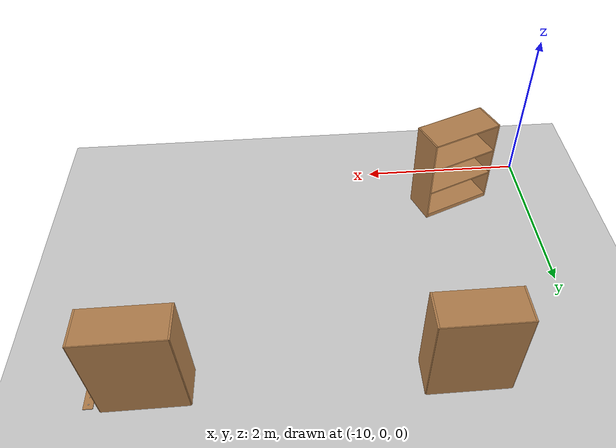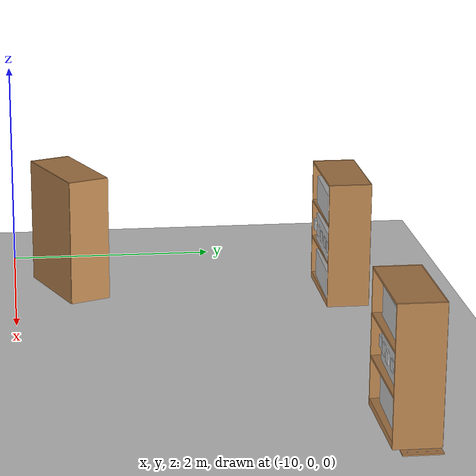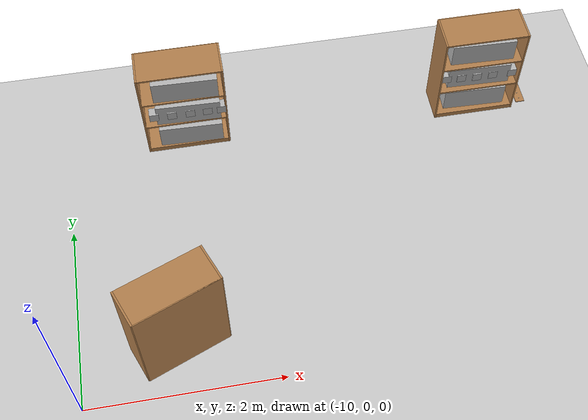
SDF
<sdf version="1.7">
 <world name="default">
  <model name="ground_plane">
   <static>1</static>
   <link name="link">
    <collision name="collision">
     <geometry><plane><normal>0 0 1</normal><size>100 100</size></plane></geometry>
     <surface><friction><ode><mu>100</mu><mu2>50</mu2></ode></friction></surface>
    </collision>
    <visual name="visual">
     <cast_shadows>0</cast_shadows>
     <geometry><plane><normal>0 0 1</normal><size>100 100</size></plane></geometry>
     <material>
      <script><uri>file://media/materials/scripts/gazebo.material</uri><name>Gazebo/Grey</name></script>
     </material>
    </visual>
   </link>
  </model>
  <model name="bookshelf_0">
   <static>1</static>
   <link name="link">
    <inertial><mass>1</mass></inertial>
    <collision name="back">
     <pose>0 0.005 0.6 0 -0 0</pose>
     <geometry><box><size>0.9 0.01 1.2</size></box></geometry>
    </collision>
    <visual name="visual1">
     <pose>0 0.005 0.6 0 -0 0</pose>
     <geometry><box><size>0.9 0.01 1.2</size></box></geometry>
     <material>
      <script><uri>file://media/materials/scripts/gazebo.material</uri><name>Gazebo/Wood</name></script>
     </material>
    </visual>
    <collision name="left_side">
     <pose>0.45 -0.195 0.6 0 -0 0</pose>
     <geometry><box><size>0.02 0.4 1.2</size></box></geometry>
    </collision>
    <visual name="visual2">
     <pose>0.45 -0.195 0.6 0 -0 0</pose>
     <geometry><box><size>0.02 0.4 1.2</size></box></geometry>
     <material>
      <script><uri>file://media/materials/scripts/gazebo.material</uri><name>Gazebo/Wood</name></script>
     </material>
    </visual>
    <collision name="right_side">
     <pose>-0.45 -0.195 0.6 0 -0 0</pose>
     <geometry><box><size>0.02 0.4 1.2</size></box></geometry>
    </collision>
    <visual name="visual3">
     <pose>-0.45 -0.195 0.6 0 -0 0</pose>
     <geometry><box><size>0.02 0.4 1.2</size></box></geometry>
     <material>
      <script><uri>file://media/materials/scripts/gazebo.material</uri><name>Gazebo/Wood</name></script>
     </material>
    </visual>
    <collision name="bottom">
     <pose>0 -0.195 0.03 0 -0 0</pose>
     <geometry><box><size>0.88 0.4 0.06</size></box></geometry>
    </collision>
    <visual name="visual4">
     <pose>0 -0.195 0.03 0 -0 0</pose>
     <geometry><box><size>0.88 0.4 0.06</size></box></geometry>
     <material>
      <script><uri>file://media/materials/scripts/gazebo.material</uri><name>Gazebo/Wood</name></script>
     </material>
    </visual>
    <collision name="top">
     <pose>0 -0.195 1.19 0 -0 0</pose>
     <geometry><box><size>0.88 0.4 0.02</size></box></geometry>
    </collision>
    <visual name="visual5">
     <pose>0 -0.195 1.19 0 -0 0</pose>
     <geometry><box><size>0.88 0.4 0.02</size></box></geometry>
     <material>
      <script><uri>file://media/materials/scripts/gazebo.material</uri><name>Gazebo/Wood</name></script>
     </material>
    </visual>
    <collision name="low_shelf">
     <pose>0 -0.195 0.43 0 -0 0</pose>
     <geometry><box><size>0.88 0.4 0.02</size></box></geometry>
    </collision>
    <visual name="visual6">
     <pose>0 -0.195 0.43 0 -0 0</pose>
     <geometry><box><size>0.88 0.4 0.02</size></box></geometry>
     <material>
      <script><uri>file://media/materials/scripts/gazebo.material</uri><name>Gazebo/Wood</name></script>
     </material>
    </visual>
    <collision name="high_shelf">
     <pose>0 -0.195 0.8 0 -0 0</pose>
     <geometry><box><size>0.88 0.4 0.02</size></box></geometry>
    </collision>
    <visual name="visual7">
     <pose>0 -0.195 0.8 0 -0 0</pose>
     <geometry><box><size>0.88 0.4 0.02</size></box></geometry>
     <material>
      <script><uri>file://media/materials/scripts/gazebo.material</uri><name>Gazebo/Wood</name></script>
     </material>
    </visual>
   </link>
   <pose>-8.64596 3.34342 0 0 -0 0</pose>
  </model>
  <model name="bookshelf_0_clone">
   <static>1</static>
   <link name="link">
    <inertial><mass>1</mass></inertial>
    <collision name="back">
     <pose>0 0.005 0.6 0 -0 0</pose>
     <geometry><box><size>0.9 0.01 1.2</size></box></geometry>
    </collision>
    <visual name="visual1">
     <pose>0 0.005 0.6 0 -0 0</pose>
     <geometry><box><size>0.9 0.01 1.2</size></box></geometry>
     <material>
      <script><uri>file://media/materials/scripts/gazebo.material</uri><name>Gazebo/Wood</name></script>
     </material>
    </visual>
    <collision name="left_side">
     <pose>0.45 -0.195 0.6 0 -0 0</pose>
     <geometry><box><size>0.02 0.4 1.2</size></box></geometry>
    </collision>
    <visual name="visual2">
     <pose>0.45 -0.195 0.6 0 -0 0</pose>
     <geometry><box><size>0.02 0.4 1.2</size></box></geometry>
     <material>
      <script><uri>file://media/materials/scripts/gazebo.material</uri><name>Gazebo/Wood</name></script>
     </material>
    </visual>
    <collision name="right_side">
     <pose>-0.45 -0.195 0.6 0 -0 0</pose>
     <geometry><box><size>0.02 0.4 1.2</size></box></geometry>
    </collision>
    <visual name="visual3">
     <pose>-0.45 -0.195 0.6 0 -0 0</pose>
     <geometry><box><size>0.02 0.4 1.2</size></box></geometry>
     <material>
      <script><uri>file://media/materials/scripts/gazebo.material</uri><name>Gazebo/Wood</name></script>
     </material>
    </visual>
    <collision name="bottom">
     <pose>0 -0.195 0.03 0 -0 0</pose>
     <geometry><box><size>0.88 0.4 0.06</size></box></geometry>
    </collision>
    <visual name="visual4">
     <pose>0 -0.195 0.03 0 -0 0</pose>
     <geometry><box><size>0.88 0.4 0.06</size></box></geometry>
     <material>
      <script><uri>file://media/materials/scripts/gazebo.material</uri><name>Gazebo/Wood</name></script>
     </material>
    </visual>
    <collision name="top">
     <pose>0 -0.195 1.19 0 -0 0</pose>
     <geometry><box><size>0.88 0.4 0.02</size></box></geometry>
    </collision>
    <visual name="visual5">
     <pose>0 -0.195 1.19 0 -0 0</pose>
     <geometry><box><size>0.88 0.4 0.02</size></box></geometry>
     <material>
      <script><uri>file://media/materials/scripts/gazebo.material</uri><name>Gazebo/Wood</name></script>
     </material>
    </visual>
    <collision name="low_shelf">
     <pose>0 -0.195 0.43 0 -0 0</pose>
     <geometry><box><size>0.88 0.4 0.02</size></box></geometry>
    </collision>
    <visual name="visual6">
     <pose>0 -0.195 0.43 0 -0 0</pose>
     <geometry><box><size>0.88 0.4 0.02</size></box></geometry>
     <material>
      <script><uri>file://media/materials/scripts/gazebo.material</uri><name>Gazebo/Wood</name></script>
     </material>
    </visual>
    <collision name="high_shelf">
     <pose>0 -0.195 0.8 0 -0 0</pose>
     <geometry><box><size>0.88 0.4 0.02</size></box></geometry>
    </collision>
    <visual name="visual7">
     <pose>0 -0.195 0.8 0 -0 0</pose>
     <geometry><box><size>0.88 0.4 0.02</size></box></geometry>
     <material>
      <script><uri>file://media/materials/scripts/gazebo.material</uri><name>Gazebo/Wood</name></script>
     </material>
    </visual>
   </link>
   <pose>-5.35741 3.26655 0 0 -0 0</pose>
  </model>
  <model name="wooden_board_clone_0">
   <link name="base">
    <pose>0 0 0.00523 0 -0 0</pose>
    <inertial>
     <mass>0.2765</mass>
     <inertia>
      <ixx>0.0025148</ixx>
      <ixy>0</ixy>
      <ixz>0</ixz>
      <iyy>0.00024037</iyy>
      <iyz>0</iyz>
      <izz>0.00275013</izz>
     </inertia>
    </inertial>
    <collision name="collision">
     <geometry><box><size>0.1016 0.3302 0.01046</size></box></geometry>
     <surface>
      <contact>
       <poissons_ratio>0.347</poissons_ratio>
       <elastic_modulus>8.8e+09</elastic_modulus>
       <ode><kp>100000</kp><kd>100</kd><max_vel>100</max_vel><min_depth>0.001</min_depth></ode>
      </contact>
      <friction>
       <torsional>
        <coefficient>1</coefficient>
        <use_patch_radius>0</use_patch_radius>
        <surface_radius>0.01</surface_radius>
       </torsional>
      </friction>
     </surface>
    </collision>
    <visual name="visual">
     <geometry><box><size>0.1016 0.3302 0.01046</size></box></geometry>
     <material>
      <script><uri>file://media/materials/scripts/gazebo.material</uri><name>Gazebo/Wood</name></script>
     </material>
    </visual>
    <visual name="tee_nut_1">
     <pose>0 -0.116 0 0 -0 0</pose>
     <geometry><cylinder><radius>0.00635</radius><length>0.0105646</length></cylinder></geometry>
     <material>
      <script><uri>file://media/materials/scripts/gazebo.material</uri><name>Gazebo/Grey</name></script>
     </material>
    </visual>
    <visual name="tee_nut_2">
     <pose>0 -0.038 0 0 -0 0</pose>
     <geometry><cylinder><radius>0.00635</radius><length>0.0105646</length></cylinder></geometry>
     <material>
      <script><uri>file://media/materials/scripts/gazebo.material</uri><name>Gazebo/Grey</name></script>
     </material>
    </visual>
    <visual name="tee_nut_3">
     <pose>0 0.038 0 0 -0 0</pose>
     <geometry><cylinder><radius>0.00635</radius><length>0.0105646</length></cylinder></geometry>
     <material>
      <script><uri>file://media/materials/scripts/gazebo.material</uri><name>Gazebo/Grey</name></script>
     </material>
    </visual>
    <visual name="tee_nut_4">
     <pose>0 0.116 0 0 -0 0</pose>
     <geometry><cylinder><radius>0.00635</radius><length>0.0105646</length></cylinder></geometry>
     <material>
      <script><uri>file://media/materials/scripts/gazebo.material</uri><name>Gazebo/Grey</name></script>
     </material>
    </visual>
   </link>
   <pose>-4.77985 3.0808 0.01899 1.9e-05 5.1e-05 0.000897</pose>
  </model>
  <model name="bookshelf_clone_clone_clone_1_clone_0_clone_3">
   <static>1</static>
   <link name="link">
    <inertial><mass>1</mass></inertial>
    <collision name="back">
     <pose>0 0.005 0.6 0 -0 0</pose>
     <geometry><box><size>0.9 0.01 1.2</size></box></geometry>
    </collision>
    <visual name="visual1">
     <pose>0 0.005 0.6 0 -0 0</pose>
     <geometry><box><size>0.9 0.01 1.2</size></box></geometry>
     <material>
      <script><uri>file://media/materials/scripts/gazebo.material</uri><name>Gazebo/Wood</name></script>
     </material>
    </visual>
    <collision name="left_side">
     <pose>0.45 -0.195 0.6 0 -0 0</pose>
     <geometry><box><size>0.02 0.4 1.2</size></box></geometry>
    </collision>
    <visual name="visual2">
     <pose>0.45 -0.195 0.6 0 -0 0</pose>
     <geometry><box><size>0.02 0.4 1.2</size></box></geometry>
     <material>
      <script><uri>file://media/materials/scripts/gazebo.material</uri><name>Gazebo/Wood</name></script>
     </material>
    </visual>
    <collision name="right_side">
     <pose>-0.45 -0.195 0.6 0 -0 0</pose>
     <geometry><box><size>0.02 0.4 1.2</size></box></geometry>
    </collision>
    <visual name="visual3">
     <pose>-0.45 -0.195 0.6 0 -0 0</pose>
     <geometry><box><size>0.02 0.4 1.2</size></box></geometry>
     <material>
      <script><uri>file://media/materials/scripts/gazebo.material</uri><name>Gazebo/Wood</name></script>
     </material>
    </visual>
    <collision name="bottom">
     <pose>0 -0.195 0.03 0 -0 0</pose>
     <geometry><box><size>0.88 0.4 0.06</size></box></geometry>
    </collision>
    <visual name="visual4">
     <pose>0 -0.195 0.03 0 -0 0</pose>
     <geometry><box><size>0.88 0.4 0.06</size></box></geometry>
     <material>
      <script><uri>file://media/materials/scripts/gazebo.material</uri><name>Gazebo/Wood</name></script>
     </material>
    </visual>
    <collision name="top">
     <pose>0 -0.195 1.19 0 -0 0</pose>
     <geometry><box><size>0.88 0.4 0.02</size></box></geometry>
    </collision>
    <visual name="visual5">
     <pose>0 -0.195 1.19 0 -0 0</pose>
     <geometry><box><size>0.88 0.4 0.02</size></box></geometry>
     <material>
      <script><uri>file://media/materials/scripts/gazebo.material</uri><name>Gazebo/Wood</name></script>
     </material>
    </visual>
    <collision name="low_shelf">
     <pose>0 -0.195 0.43 0 -0 0</pose>
     <geometry><box><size>0.88 0.4 0.02</size></box></geometry>
    </collision>
    <visual name="visual6">
     <pose>0 -0.195 0.43 0 -0 0</pose>
     <geometry><box><size>0.88 0.4 0.02</size></box></geometry>
     <material>
      <script><uri>file://media/materials/scripts/gazebo.material</uri><name>Gazebo/Wood</name></script>
     </material>
    </visual>
    <collision name="high_shelf">
     <pose>0 -0.195 0.8 0 -0 0</pose>
     <geometry><box><size>0.88 0.4 0.02</size></box></geometry>
    </collision>
    <visual name="visual7">
     <pose>0 -0.195 0.8 0 -0 0</pose>
     <geometry><box><size>0.88 0.4 0.02</size></box></geometry>
     <material>
      <script><uri>file://media/materials/scripts/gazebo.material</uri><name>Gazebo/Wood</name></script>
     </material>
    </visual>
   </link>
   <pose>-8.92253 0.361108 0.012624 0 0 -2.75538</pose>
  </model>
  <model name="book1.xacro">
   <link name="base_footprint">
    <inertial>
     <pose>1 1 1.5 0 -0 0</pose>
     <mass>6</mass>
     <inertia><ixx>0.7503</ixx><ixy>0</ixy><ixz>0</ixz><iyy>0.7503</iyy><iyz>0</iyz><izz>0.003</izz></inertia>
    </inertial>
    <collision name="base_footprint_fixed_joint_lump__base_link_collision">
     <pose>1 1 1 0 -0 0</pose>
     <geometry><box><size>0.7 0.2 0.27</size></box></geometry>
    </collision>
    <collision name="base_footprint_fixed_joint_lump__book_link_2_collision_1">
     <pose>1 1 1.375 0 -0 0</pose>
     <geometry><box><size>0.7 0.2 0.27</size></box></geometry>
    </collision>
    <collision name="base_footprint_fixed_joint_lump__book_link_3_collision_2">
     <pose>1 1 1.75 0 -0 0</pose>
     <geometry><box><size>0.7 0.2 0.27</size></box></geometry>
    </collision>
    <visual name="base_footprint_fixed_joint_lump__base_link_visual">
     <pose>1 1 1 0 -0 0</pose>
     <geometry><box><size>0.7 0.2 0.27</size></box></geometry>
    </visual>
    <visual name="base_footprint_fixed_joint_lump__book_link_2_visual_1">
     <pose>1 1 1.375 0 -0 0</pose>
     <geometry><box><size>0.7 0.2 0.27</size></box></geometry>
    </visual>
    <visual name="base_footprint_fixed_joint_lump__book_link_3_visual_2">
     <pose>1 1 1.75 0 -0 0</pose>
     <geometry><box><size>0.7 0.2 0.27</size></box></geometry>
    </visual>
   </link>
   <frame name="book_joint_2" attached_to="base_link"><pose>0 0 0.375 0 -0 0</pose></frame>
   <frame name="book_link_2" attached_to="book_joint_2"/>
   <frame name="book_joint_3" attached_to="base_link"><pose>0 0 0.75 0 -0 0</pose></frame>
   <frame name="book_link_3" attached_to="book_joint_3"/>
   <frame name="base_joint" attached_to="base_footprint"><pose>1 1 1 0 -0 0</pose></frame>
   <frame name="base_link" attached_to="base_joint"/>
   <pose>-9.63482 2.08888 -0.800018 0 -1.3e-05 -0.029709</pose>
  </model>
  <model name="book1.xacro_clone">
   <link name="base_footprint">
    <inertial>
     <pose>1 1 1.5 0 -0 0</pose>
     <mass>6</mass>
     <inertia><ixx>0.7503</ixx><ixy>0</ixy><ixz>0</ixz><iyy>0.7503</iyy><iyz>0</iyz><izz>0.003</izz></inertia>
    </inertial>
    <collision name="base_footprint_fixed_joint_lump__base_link_collision">
     <pose>1 1 1 0 -0 0</pose>
     <geometry><box><size>0.7 0.2 0.27</size></box></geometry>
    </collision>
    <collision name="base_footprint_fixed_joint_lump__book_link_2_collision_1">
     <pose>1 1 1.375 0 -0 0</pose>
     <geometry><box><size>0.7 0.2 0.27</size></box></geometry>
    </collision>
    <collision name="base_footprint_fixed_joint_lump__book_link_3_collision_2">
     <pose>1 1 1.75 0 -0 0</pose>
     <geometry><box><size>0.7 0.2 0.27</size></box></geometry>
    </collision>
    <visual name="base_footprint_fixed_joint_lump__base_link_visual">
     <pose>1 1 1 0 -0 0</pose>
     <geometry><box><size>0.7 0.2 0.27</size></box></geometry>
    </visual>
    <visual name="base_footprint_fixed_joint_lump__book_link_2_visual_1">
     <pose>1 1 1.375 0 -0 0</pose>
     <geometry><box><size>0.7 0.2 0.27</size></box></geometry>
    </visual>
    <visual name="base_footprint_fixed_joint_lump__book_link_3_visual_2">
     <pose>1 1 1.75 0 -0 0</pose>
     <geometry><box><size>0.7 0.2 0.27</size></box></geometry>
    </visual>
   </link>
   <frame name="book_joint_2" attached_to="base_link"><pose>0 0 0.375 0 -0 0</pose></frame>
   <frame name="book_link_2" attached_to="book_joint_2"/>
   <frame name="book_joint_3" attached_to="base_link"><pose>0 0 0.75 0 -0 0</pose></frame>
   <frame name="book_link_3" attached_to="book_joint_3"/>
   <frame name="base_joint" attached_to="base_footprint"><pose>1 1 1 0 -0 0</pose></frame>
   <frame name="base_link" attached_to="base_joint"/>
   <pose>-6.38347 2.05831 -0.8 0 0 -0.030722</pose>
  </model>
  <model name="A_0">
   <static>1</static>
   <link name="link">
    <pose>0 0 0.58 1.57 -0 0</pose>
    <inertial>
     <mass>0.1</mass>
     <inertia><ixx>0.00058</ixx><ixy>0</ixy><ixz>0</ixz><iyy>0.00058</iyy><iyz>0</iyz><izz>0.00019</izz></inertia>
    </inertial>
    <collision name="collision"><geometry><box><size>0 0 0</size></box></geometry></collision>
    <visual name="visual">
     <geometry><box><size>0.1 0.1 0.1</size></box></geometry>
     <material>
      <script>
       <uri>model://A/materials/scripts</uri>
       <uri>model://A/materials/textures</uri>
       <name>A/Diffuse</name>
      </script>
     </material>
    </visual>
   </link>
   <pose>-8.5888 2.99894 -0 0 -0 0</pose>
  </model>
  <model name="A1">
   <static>1</static>
   <link name="link">
    <pose>0 0 0.58 1.57 -0 0</pose>
    <inertial>
     <mass>0.1</mass>
     <inertia><ixx>0.00058</ixx><ixy>0</ixy><ixz>0</ixz><iyy>0.00058</iyy><iyz>0</iyz><izz>0.00019</izz></inertia>
    </inertial>
    <collision name="collision"><geometry><box><size>0 0 0</size></box></geometry></collision>
    <visual name="visual">
     <geometry><box><size>0.1 0.1 0.1</size></box></geometry>
     <material>
      <script>
       <uri>model://A1/materials/scripts</uri>
       <uri>model://A1/materials/textures</uri>
       <name>A1/Diffuse</name>
      </script>
     </material>
    </visual>
   </link>
   <pose>-8.78822 2.99978 -0 0 -0 0</pose>
  </model>
  <model name="A2">
   <static>1</static>
   <link name="link">
    <pose>0 0 0.58 1.57 -0 0</pose>
    <inertial>
     <mass>0.1</mass>
     <inertia><ixx>0.00058</ixx><ixy>0</ixy><ixz>0</ixz><iyy>0.00058</iyy><iyz>0</iyz><izz>0.00019</izz></inertia>
    </inertial>
    <collision name="collision"><geometry><box><size>0 0 0</size></box></geometry></collision>
    <visual name="visual">
     <geometry><box><size>0.1 0.1 0.1</size></box></geometry>
     <material>
      <script>
       <uri>model://A2/materials/scripts</uri>
       <uri>model://A2/materials/textures</uri>
       <name>A2/Diffuse</name>
      </script>
     </material>
    </visual>
   </link>
   <pose>-8.4005 2.99868 -0 0 -0 0</pose>
  </model>
  <model name="B">
   <static>1</static>
   <link name="link">
    <pose>0 0 0.58 1.57 -0 0</pose>
    <inertial>
     <mass>0.1</mass>
     <inertia><ixx>0.00058</ixx><ixy>0</ixy><ixz>0</ixz><iyy>0.00058</iyy><iyz>0</iyz><izz>0.00019</izz></inertia>
    </inertial>
    <collision name="collision"><geometry><box><size>0 0 0</size></box></geometry></collision>
    <visual name="visual">
     <geometry><box><size>0.1 0.1 0.1</size></box></geometry>
     <material>
      <script>
       <uri>model://B/materials/scripts</uri>
       <uri>model://B/materials/textures</uri>
       <name>B/Diffuse</name>
      </script>
     </material>
    </visual>
   </link>
   <pose>-8.98231 3.00175 -0 0 -0 0</pose>
  </model>
  <model name="B1">
   <static>1</static>
   <link name="link">
    <pose>0 0 0.58 1.57 -0 0</pose>
    <inertial>
     <mass>0.1</mass>
     <inertia><ixx>0.00058</ixx><ixy>0</ixy><ixz>0</ixz><iyy>0.00058</iyy><iyz>0</iyz><izz>0.00019</izz></inertia>
    </inertial>
    <collision name="collision"><geometry><box><size>0 0 0</size></box></geometry></collision>
    <visual name="visual">
     <geometry><box><size>0.1 0.1 0.1</size></box></geometry>
     <material>
      <script>
       <uri>model://B1/materials/scripts</uri>
       <uri>model://B1/materials/textures</uri>
       <name>B1/Diffuse</name>
      </script>
     </material>
    </visual>
   </link>
   <pose>-8.2479 2.99736 -0 0 -0 0</pose>
  </model>
  <model name="B2">
   <static>1</static>
   <link name="link">
    <pose>0 0 0.58 1.57 -0 0</pose>
    <inertial>
     <mass>0.1</mass>
     <inertia><ixx>0.00058</ixx><ixy>0</ixy><ixz>0</ixz><iyy>0.00058</iyy><iyz>0</iyz><izz>0.00019</izz></inertia>
    </inertial>
    <collision name="collision"><geometry><box><size>0 0 0</size></box></geometry></collision>
    <visual name="visual">
     <geometry><box><size>0.1 0.1 0.1</size></box></geometry>
     <material>
      <script>
       <uri>model://B2/materials/scripts</uri>
       <uri>model://B2/materials/textures</uri>
       <name>B2/Diffuse</name>
      </script>
     </material>
    </visual>
   </link>
   <pose>-5.72347 2.98205 -0 0 -0 0</pose>
  </model>
  <model name="B3">
   <static>1</static>
   <link name="link">
    <pose>0 0 0.58 1.57 -0 0</pose>
    <inertial>
     <mass>0.1</mass>
     <inertia><ixx>0.00058</ixx><ixy>0</ixy><ixz>0</ixz><iyy>0.00058</iyy><iyz>0</iyz><izz>0.00019</izz></inertia>
    </inertial>
    <collision name="collision"><geometry><box><size>0 0 0</size></box></geometry></collision>
    <visual name="visual">
     <geometry><box><size>0.1 0.1 0.1</size></box></geometry>
     <material>
      <script>
       <uri>model://B3/materials/scripts</uri>
       <uri>model://B3/materials/textures</uri>
       <name>B3/Diffuse</name>
      </script>
     </material>
    </visual>
   </link>
   <pose>-4.9821 2.95775 -0 0 -0 0</pose>
  </model>
  <model name="A3">
   <static>1</static>
   <link name="link">
    <pose>0 0 0.58 1.57 -0 0</pose>
    <inertial>
     <mass>0.1</mass>
     <inertia><ixx>0.00058</ixx><ixy>0</ixy><ixz>0</ixz><iyy>0.00058</iyy><iyz>0</iyz><izz>0.00019</izz></inertia>
    </inertial>
    <collision name="collision"><geometry><box><size>0 0 0</size></box></geometry></collision>
    <visual name="visual">
     <geometry><box><size>0.1 0.1 0.1</size></box></geometry>
     <material>
      <script>
       <uri>model://A3/materials/scripts</uri>
       <uri>model://A3/materials/textures</uri>
       <name>A3/Diffuse</name>
      </script>
     </material>
    </visual>
   </link>
   <pose>-5.55986 2.97283 -0 0 -0 0</pose>
  </model>
  <model name="A4">
   <static>1</static>
   <link name="link">
    <pose>0 0 0.58 1.57 -0 0</pose>
    <inertial>
     <mass>0.1</mass>
     <inertia><ixx>0.00058</ixx><ixy>0</ixy><ixz>0</ixz><iyy>0.00058</iyy><iyz>0</iyz><izz>0.00019</izz></inertia>
    </inertial>
    <collision name="collision"><geometry><box><size>0 0 0</size></box></geometry></collision>
    <visual name="visual">
     <geometry><box><size>0.1 0.1 0.1</size></box></geometry>
     <material>
      <script>
       <uri>model://A4/materials/scripts</uri>
       <uri>model://A4/materials/textures</uri>
       <name>A4/Diffuse</name>
      </script>
     </material>
    </visual>
   </link>
   <pose>-5.38449 2.96238 -0 0 -0 0</pose>
  </model>
  <model name="A5">
   <static>1</static>
   <link name="link">
    <pose>0 0 0.58 1.57 -0 0</pose>
    <inertial>
     <mass>0.1</mass>
     <inertia><ixx>0.00058</ixx><ixy>0</ixy><ixz>0</ixz><iyy>0.00058</iyy><iyz>0</iyz><izz>0.00019</izz></inertia>
    </inertial>
    <collision name="collision"><geometry><box><size>0 0 0</size></box></geometry></collision>
    <visual name="visual">
     <geometry><box><size>0.1 0.1 0.1</size></box></geometry>
     <material>
      <script>
       <uri>model://A5/materials/scripts</uri>
       <uri>model://A5/materials/textures</uri>
       <name>A5/Diffuse</name>
      </script>
     </material>
    </visual>
   </link>
   <pose>-5.20221 2.96415 -0 0 -0 0</pose>
  </model>
 </world>
</sdf>
